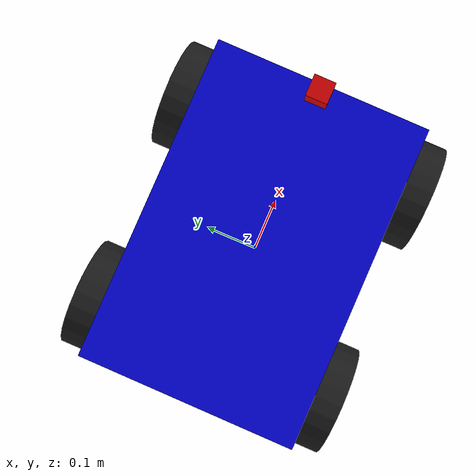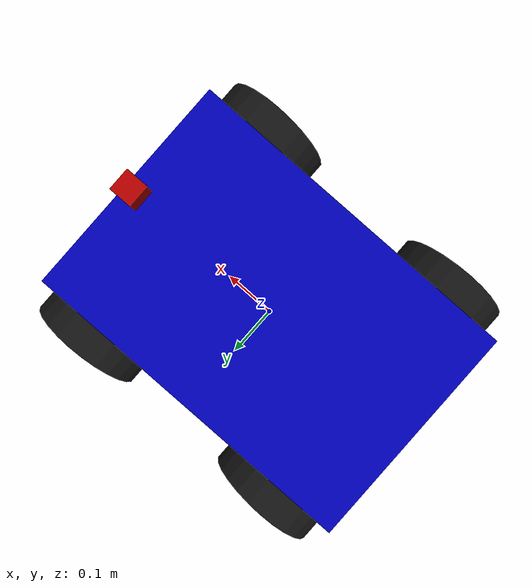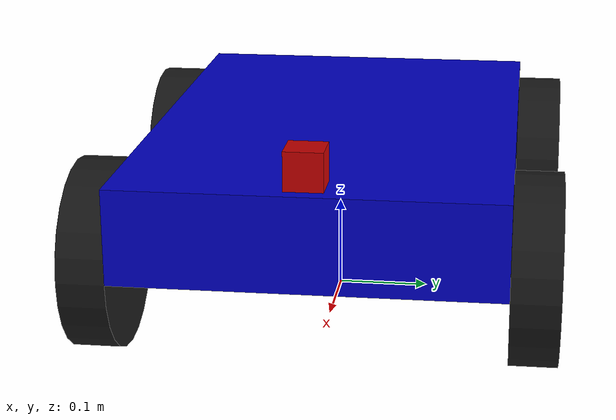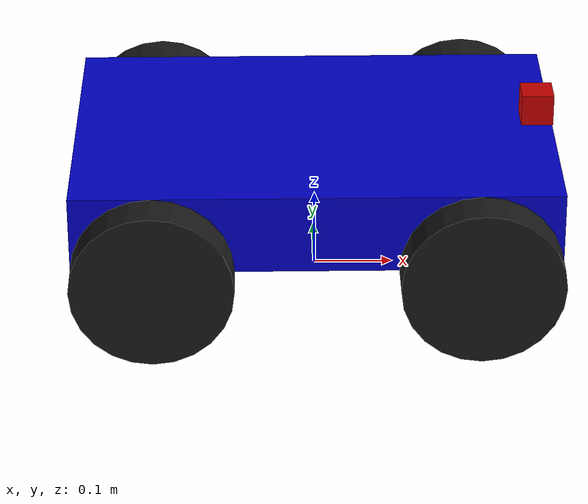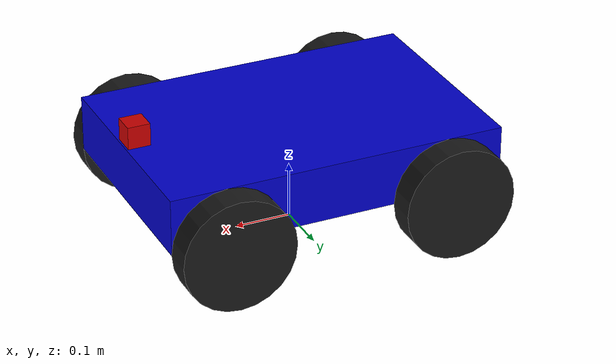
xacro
<?xml version="1.0"?>
<robot xmlns:xacro="http://www.ros.org/wiki/xacro" name="race_vehicle">

  <!-- Relative Include for Gazebo Plugins -->
  <xacro:include filename="gazebo_plugins.xacro" />

  <!-- RViz Materials -->
  <material name="blue"><color rgba="0.0 0.0 0.8 1.0"/></material>
  <material name="black"><color rgba="0.1 0.1 0.1 1.0"/></material>
  <material name="red"><color rgba="0.8 0.0 0.0 1.0"/></material>

  <!-- Base Footprint -->
  <link name="base_footprint"/>

  <joint name="base_footprint_joint" type="fixed">
    <parent link="base_footprint"/>
    <child link="base_link"/>
    <origin xyz="0 0 0.1" rpy="0 0 0"/>
  </joint>

  <!-- Base Link / Chassis -->
  <link name="base_link">
    <visual>
      <origin xyz="0 0 0.05" rpy="0 0 0"/>
      <geometry>
        <box size="0.6 0.4 0.1"/>
      </geometry>
      <material name="blue"/>
    </visual>
    <collision>
      <origin xyz="0 0 0.05" rpy="0 0 0"/>
      <geometry>
        <box size="0.6 0.4 0.1"/>
      </geometry>
    </collision>
    <inertial>
      <mass value="2.0"/>
      <origin xyz="0 0 0.05" rpy="0 0 0"/>
      <inertia ixx="0.028" ixy="0.0" ixz="0.0" iyy="0.062" iyz="0.0" izz="0.086"/>
    </inertial>
  </link>

  <!-- Wheel Macro -->
  <xacro:macro name="wheel" params="prefix x_reflect y_reflect">
    <joint name="${prefix}_wheel_joint" type="continuous">
      <parent link="base_link"/>
      <child link="${prefix}_wheel_link"/>
      <origin xyz="${x_reflect * 0.2} ${y_reflect * 0.225} 0.0" rpy="-1.5708 0 0"/>
      <axis xyz="0 0 1"/>
    </joint>

    <link name="${prefix}_wheel_link">
      <visual>
        <geometry>
          <cylinder radius="0.1" length="0.05"/>
        </geometry>
        <material name="black"/>
      </visual>
      <collision>
        <geometry>
          <cylinder radius="0.1" length="0.05"/>
        </geometry>
      </collision>
      <inertial>
        <mass value="0.4"/>
        <origin xyz="0 0 0" rpy="0 0 0"/>
        <inertia ixx="0.00108" ixy="0.0" ixz="0.0" iyy="0.00108" iyz="0.0" izz="0.002"/>
      </inertial>
    </link>
  </xacro:macro>

  <!-- Instantiate 4 Wheels -->
  <xacro:wheel prefix="front_left"  x_reflect="1"  y_reflect="1" />
  <xacro:wheel prefix="front_right" x_reflect="1"  y_reflect="-1" />
  <xacro:wheel prefix="rear_left"   x_reflect="-1" y_reflect="1" />
  <xacro:wheel prefix="rear_right"  x_reflect="-1" y_reflect="-1" />

  <!-- Vision Sensor (Camera Link) -->
  <joint name="camera_joint" type="fixed">
    <parent link="base_link"/>
    <child link="camera_link"/>
    <origin xyz="0.28 0.0 0.125" rpy="0 0 0"/>
  </joint>

  <link name="camera_link">
    <visual>
      <geometry>
        <box size="0.04 0.04 0.04"/>
      </geometry>
      <material name="red"/>
    </visual>
    <collision>
      <geometry>
        <box size="0.04 0.04 0.04"/>
      </geometry>
    </collision>
    <inertial>
      <mass value="0.05"/>
      <origin xyz="0 0 0" rpy="0 0 0"/>
      <inertia ixx="0.00001" ixy="0.0" ixz="0.0" iyy="0.00001" iyz="0.0" izz="0.00001"/>
    </inertial>
  </link>

  <!-- Optical Frame -->
  <joint name="camera_optical_joint" type="fixed">
    <parent link="camera_link"/>
    <child link="camera_link_optical"/>
    <origin xyz="0 0 0" rpy="-1.5708 0 -1.5708"/>
  </joint>
  <link name="camera_link_optical"/>

</robot>
